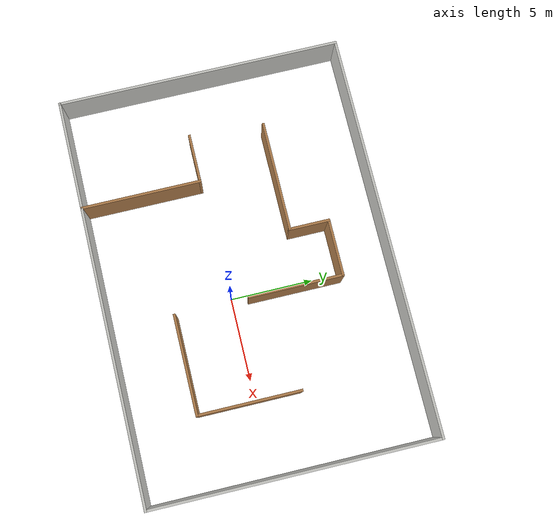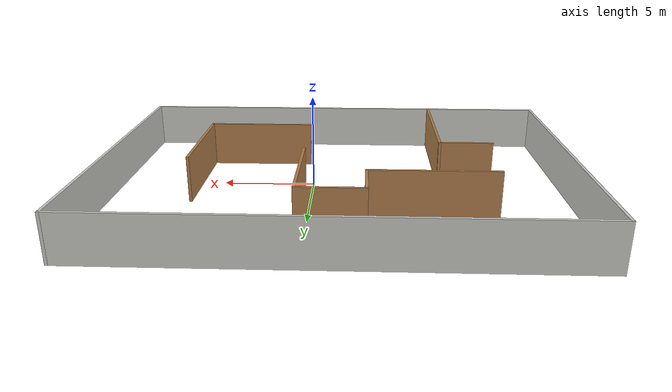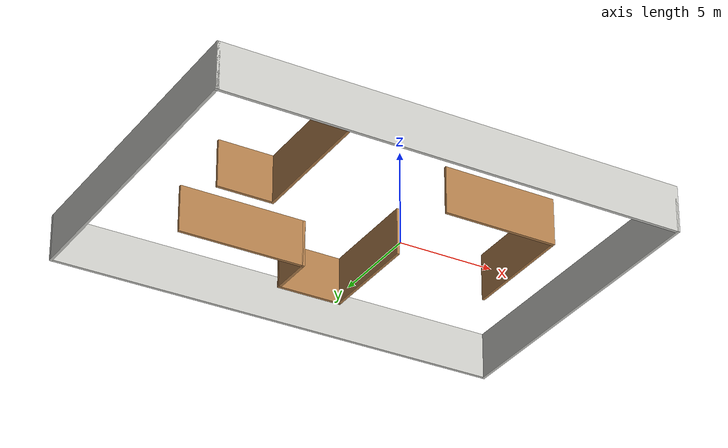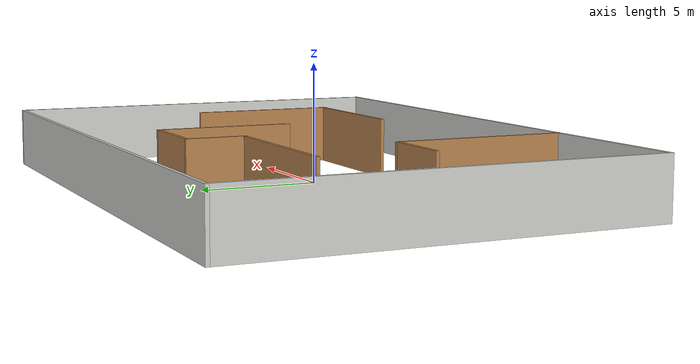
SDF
<?xml version='1.0'?>
<sdf version='1.7'>
  <model name='Maze'>
    <pose>-1.42016 1.19345 0 0 -0 0</pose>
    <link name='Wall_62'>
      <collision name='Wall_62_Collision'>
        <geometry>
          <box>
            <size>17.25 0.15 2.5</size>
          </box>
        </geometry>
        <pose>0 0 1.25 0 -0 0</pose>
      </collision>
      <visual name='Wall_62_Visual'>
        <pose>0 0 1.25 0 -0 0</pose>
        <geometry>
          <box>
            <size>17.25 0.15 2.5</size>
          </box>
        </geometry>
        <material>
          <script>
            <uri>file://media/materials/scripts/gazebo.material</uri>
            <name>Gazebo/CeilingTiled</name>
          </script>
          <ambient>1 1 1 1</ambient>
        </material>
        <meta>
          <layer>0</layer>
        </meta>
      </visual>
      <pose>12.175 0 0 0 -0 1.5708</pose>
    </link>
    <link name='Wall_63'>
      <collision name='Wall_63_Collision'>
        <geometry>
          <box>
            <size>24.5 0.15 2.5</size>
          </box>
        </geometry>
        <pose>0 0 1.25 0 -0 0</pose>
      </collision>
      <visual name='Wall_63_Visual'>
        <pose>0 0 1.25 0 -0 0</pose>
        <geometry>
          <box>
            <size>24.5 0.15 2.5</size>
          </box>
        </geometry>
        <material>
          <script>
            <uri>file://media/materials/scripts/gazebo.material</uri>
            <name>Gazebo/CeilingTiled</name>
          </script>
          <ambient>1 1 1 1</ambient>
        </material>
        <meta>
          <layer>0</layer>
        </meta>
      </visual>
      <pose>0 8.55 0 0 -0 3.14159</pose>
    </link>
    <link name='Wall_65'>
      <collision name='Wall_65_Collision'>
        <geometry>
          <box>
            <size>17.25 0.15 2.5</size>
          </box>
        </geometry>
        <pose>0 0 1.25 0 -0 0</pose>
      </collision>
      <visual name='Wall_65_Visual'>
        <pose>0 0 1.25 0 -0 0</pose>
        <geometry>
          <box>
            <size>17.25 0.15 2.5</size>
          </box>
        </geometry>
        <material>
          <script>
            <uri>file://media/materials/scripts/gazebo.material</uri>
            <name>Gazebo/CeilingTiled</name>
          </script>
          <ambient>1 1 1 1</ambient>
        </material>
        <meta>
          <layer>0</layer>
        </meta>
      </visual>
      <pose>-12.175 0 0 0 -0 -1.5708</pose>
    </link>
    <link name='Wall_67'>
      <collision name='Wall_67_Collision'>
        <geometry>
          <box>
            <size>24.5 0.15 2.5</size>
          </box>
        </geometry>
        <pose>0 0 1.25 0 -0 0</pose>
      </collision>
      <visual name='Wall_67_Visual'>
        <pose>0 0 1.25 0 -0 0</pose>
        <geometry>
          <box>
            <size>24.5 0.15 2.5</size>
          </box>
        </geometry>
        <material>
          <script>
            <uri>file://media/materials/scripts/gazebo.material</uri>
            <name>Gazebo/CeilingTiled</name>
          </script>
          <ambient>1 1 1 1</ambient>
        </material>
        <meta>
          <layer>0</layer>
        </meta>
      </visual>
      <pose>0 -8.55 0 0 -0 0</pose>
    </link>
    <link name='Wall_77'>
      <collision name='Wall_77_Collision'>
        <geometry>
          <box>
            <size>6.75 0.15 2.5</size>
          </box>
        </geometry>
        <pose>0 0 1.25 0 -0 0</pose>
      </collision>
      <visual name='Wall_77_Visual'>
        <pose>0 0 1.25 0 -0 0</pose>
        <geometry>
          <box>
            <size>6.75 0.15 2.5</size>
          </box>
        </geometry>
        <material>
          <script>
            <uri>file://media/materials/scripts/gazebo.material</uri>
            <name>Gazebo/Wood</name>
          </script>
          <ambient>1 1 1 1</ambient>
        </material>
        <meta>
          <layer>0</layer>
        </meta>
      </visual>
      <pose>-4.79625 3.06075 0 0 -0 0</pose>
    </link>
    <link name='Wall_78'>
      <collision name='Wall_78_Collision'>
        <geometry>
          <box>
            <size>2.5 0.15 2.5</size>
          </box>
        </geometry>
        <pose>0 0 1.25 0 -0 0</pose>
      </collision>
      <visual name='Wall_78_Visual'>
        <pose>0 0 1.25 0 -0 0</pose>
        <geometry>
          <box>
            <size>2.5 0.15 2.5</size>
          </box>
        </geometry>
        <material>
          <script>
            <uri>file://media/materials/scripts/gazebo.material</uri>
            <name>Gazebo/Wood</name>
          </script>
          <ambient>1 1 1 1</ambient>
        </material>
        <meta>
          <layer>0</layer>
        </meta>
      </visual>
      <pose>-1.49625 4.23575 0 0 -0 1.5708</pose>
    </link>
    <link name='Wall_79'>
      <collision name='Wall_79_Collision'>
        <geometry>
          <box>
            <size>3.5 0.15 2.5</size>
          </box>
        </geometry>
        <pose>0 0 1.25 0 -0 0</pose>
      </collision>
      <visual name='Wall_79_Visual'>
        <pose>0 0 1.25 0 -0 0</pose>
        <geometry>
          <box>
            <size>3.5 0.15 2.5</size>
          </box>
        </geometry>
        <material>
          <script>
            <uri>file://media/materials/scripts/gazebo.material</uri>
            <name>Gazebo/Wood</name>
          </script>
          <ambient>1 1 1 1</ambient>
        </material>
        <meta>
          <layer>0</layer>
        </meta>
      </visual>
      <pose>0.178747 5.41075 0 0 -0 0</pose>
    </link>
    <link name='Wall_80'>
      <collision name='Wall_80_Collision'>
        <geometry>
          <box>
            <size>5.75 0.15 2.5</size>
          </box>
        </geometry>
        <pose>0 0 1.25 0 -0 0</pose>
      </collision>
      <visual name='Wall_80_Visual'>
        <pose>0 0 1.25 0 -0 0</pose>
        <geometry>
          <box>
            <size>5.75 0.15 2.5</size>
          </box>
        </geometry>
        <material>
          <script>
            <uri>file://media/materials/scripts/gazebo.material</uri>
            <name>Gazebo/Wood</name>
          </script>
          <ambient>1 1 1 1</ambient>
        </material>
        <meta>
          <layer>0</layer>
        </meta>
      </visual>
      <pose>1.85375 2.61075 0 0 -0 -1.5708</pose>
    </link>
    <link name='Wall_82'>
      <collision name='Wall_82_Collision'>
        <geometry>
          <box>
            <size>6 0.15 2.5</size>
          </box>
        </geometry>
        <pose>0 0 1.25 0 -0 0</pose>
      </collision>
      <visual name='Wall_82_Visual'>
        <pose>0 0 1.25 0 -0 0</pose>
        <geometry>
          <box>
            <size>6 0.15 2.5</size>
          </box>
        </geometry>
        <material>
          <script>
            <uri>file://media/materials/scripts/gazebo.material</uri>
            <name>Gazebo/Wood</name>
          </script>
          <ambient>1 1 1 1</ambient>
        </material>
        <meta>
          <layer>0</layer>
        </meta>
      </visual>
      <pose>4.82127 -4.62581 0 0 -0 0</pose>
    </link>
    <link name='Wall_83'>
      <collision name='Wall_83_Collision'>
        <geometry>
          <box>
            <size>6.25 0.15 2.5</size>
          </box>
        </geometry>
        <pose>0 0 1.25 0 -0 0</pose>
      </collision>
      <visual name='Wall_83_Visual'>
        <pose>0 0 1.25 0 -0 0</pose>
        <geometry>
          <box>
            <size>6.25 0.15 2.5</size>
          </box>
        </geometry>
        <material>
          <script>
            <uri>file://media/materials/scripts/gazebo.material</uri>
            <name>Gazebo/Wood</name>
          </script>
          <ambient>1 1 1 1</ambient>
        </material>
        <meta>
          <layer>0</layer>
        </meta>
      </visual>
      <pose>7.74627 -1.57581 0 0 -0 1.5708</pose>
    </link>
    <link name='Wall_85'>
      <collision name='Wall_85_Collision'>
        <geometry>
          <box>
            <size>7.25 0.15 2.5</size>
          </box>
        </geometry>
        <pose>0 0 1.25 0 -0 0</pose>
      </collision>
      <visual name='Wall_85_Visual'>
        <pose>0 0 1.25 0 -0 0</pose>
        <geometry>
          <box>
            <size>7.25 0.15 2.5</size>
          </box>
        </geometry>
        <material>
          <script>
            <uri>file://media/materials/scripts/gazebo.material</uri>
            <name>Gazebo/Wood</name>
          </script>
          <ambient>1 1 1 1</ambient>
        </material>
        <meta>
          <layer>0</layer>
        </meta>
      </visual>
      <pose>-5.54755 -4.95954 0 0 -0 1.5708</pose>
    </link>
    <link name='Wall_86'>
      <collision name='Wall_86_Collision'>
        <geometry>
          <box>
            <size>3 0.15 2.5</size>
          </box>
        </geometry>
        <pose>0 0 1.25 0 -0 0</pose>
      </collision>
      <visual name='Wall_86_Visual'>
        <pose>0 0 1.25 0 -0 0</pose>
        <geometry>
          <box>
            <size>3 0.15 2.5</size>
          </box>
        </geometry>
        <material>
          <script>
            <uri>file://media/materials/scripts/gazebo.material</uri>
            <name>Gazebo/Wood</name>
          </script>
          <ambient>1 1 1 1</ambient>
        </material>
        <meta>
          <layer>0</layer>
        </meta>
      </visual>
      <pose>-6.97255 -1.40954 0 0 -0 3.14159</pose>
    </link>
    <static>1</static>
  </model>
</sdf>
